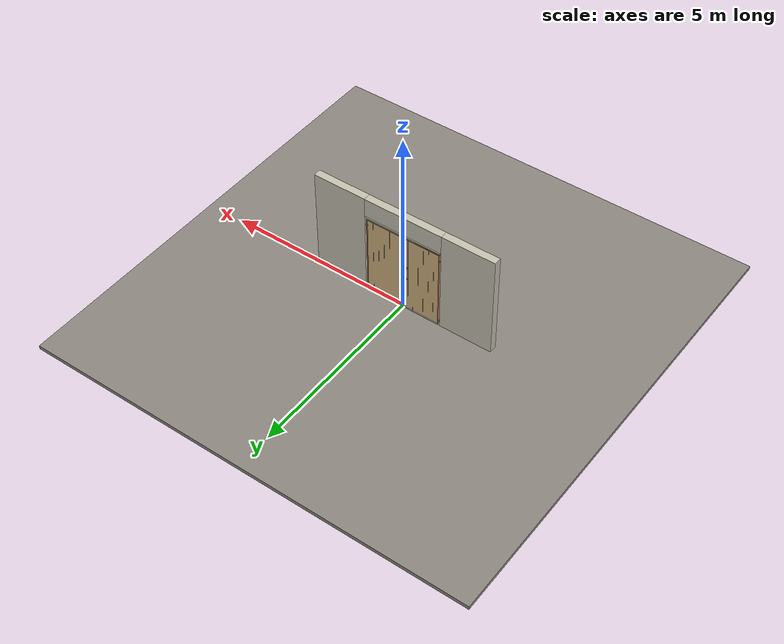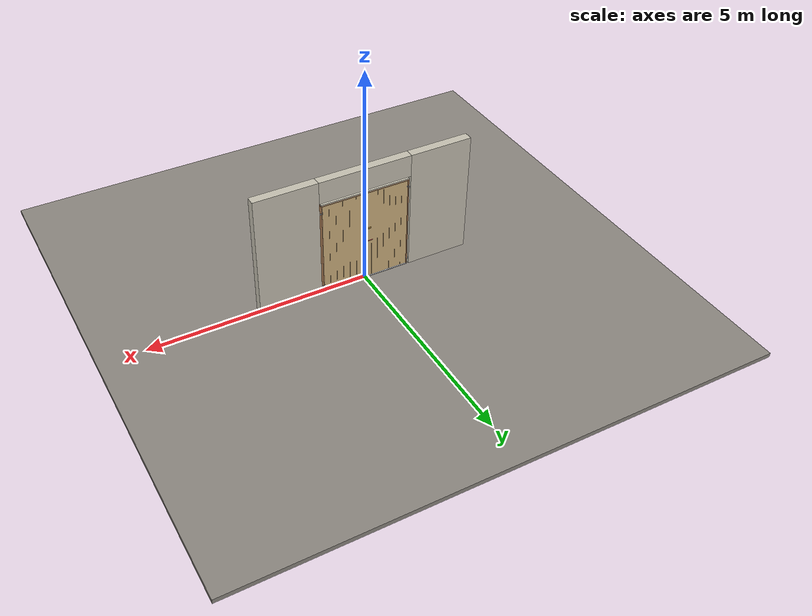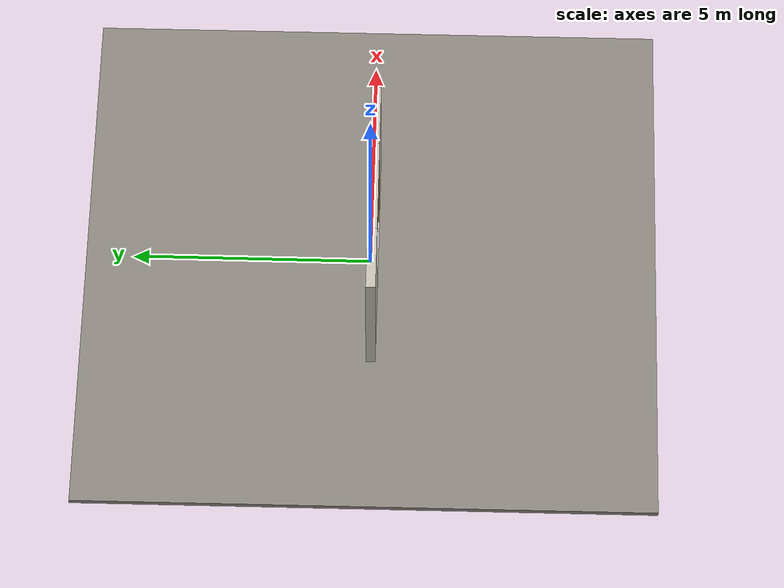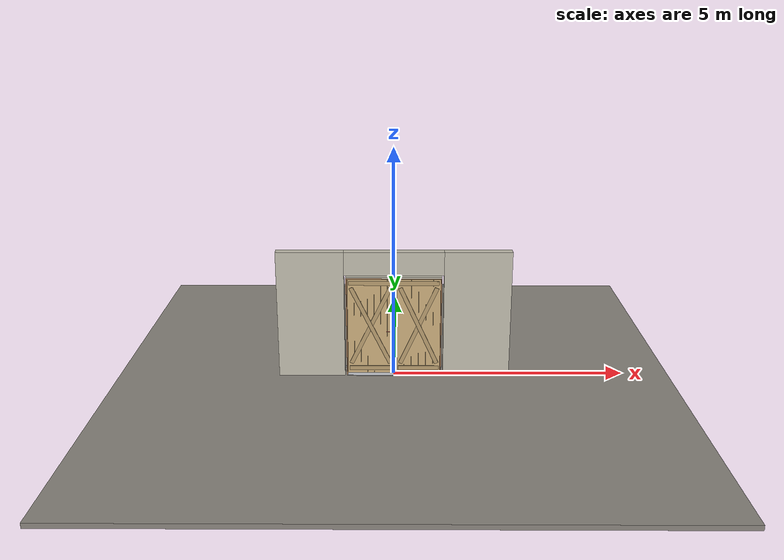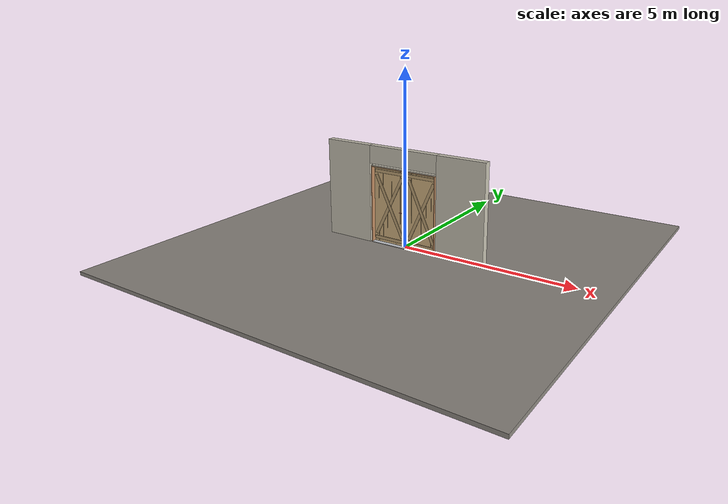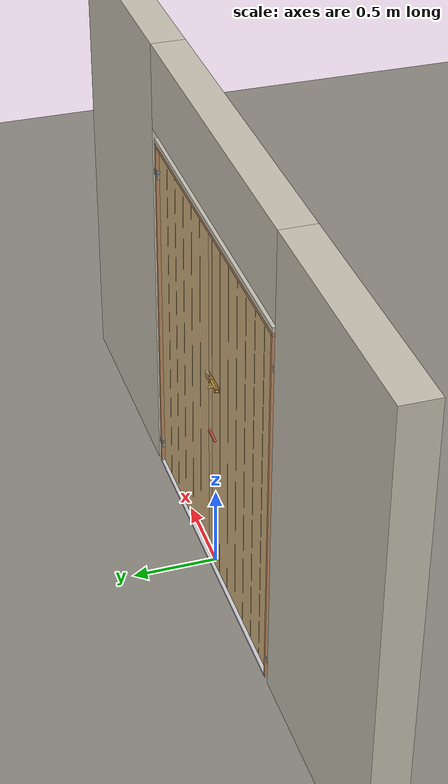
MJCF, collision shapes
<?xml version="1.0" ?>
<mujoco model="db0279_swing_double_full">
  <compiler angle="radian" meshdir="../../hardware" texturedir="../../textures" autolimits="true" inertiafromgeom="false"/>
  <option timestep="0.002" integrator="implicitfast" cone="elliptic" impratio="10" noslip_iterations="3">
    <flag multiccd="enable"/>
  </option>
  <size memory="16M"/>
  <default>
    <geom condim="4" solref="0.005 1" solimp="0.95 0.99 0.001"/>
    <joint solreflimit="0.005 1" solimplimit="0.95 0.99 0.001"/>
    <tendon solreflimit="0.005 1"/>
    <equality solref="0.002 1"/>
  </default>
  <visual>
    <headlight ambient="0.4 0.4 0.4" diffuse="0.7 0.7 0.7" specular="0.2 0.2 0.2"/>
    <quality shadowsize="4096"/>
    <map znear="0.01" zfar="60"/>
  </visual>
  <asset>
    <mesh name="ring_cc5c941a8a" file="ring_cc5c941a8a.obj"/>
    <mesh name="strap_hinge_78d1bbb966" file="strap_hinge_78d1bbb966.obj"/>
    <material name="mat_floor" rgba="0.55 0.53 0.5 1" specular="0.2" shininess="0.15" reflectance="0"/>
    <material name="mat_wall" rgba="0.78 0.76 0.7 1" specular="0.2" shininess="0.1" reflectance="0"/>
    <material name="mat_leaf_a" rgba="0.82 0.7 0.5 1" specular="0.2" shininess="0.45" reflectance="0"/>
    <material name="mat_leaf_a_brace" rgba="0.738 0.63 0.45 1" specular="0.2" shininess="0.2" reflectance="0"/>
    <material name="mat_hinge" rgba="0.65 0.66 0.68 1" specular="0.74" shininess="0.5" reflectance="0.36"/>
    <material name="mat_op_wrought_iron" rgba="0.08 0.08 0.09 1" specular="0.56" shininess="0.25" reflectance="0.24"/>
    <material name="mat_op_brass" rgba="0.85 0.66 0.3 1" specular="0.8" shininess="0.75" reflectance="0.4"/>
    <material name="mat_leaf_b" rgba="0.82 0.7 0.5 1" specular="0.2" shininess="0.45" reflectance="0"/>
    <material name="mat_leaf_b_brace" rgba="0.738 0.63 0.45 1" specular="0.2" shininess="0.2" reflectance="0"/>
    <material name="mat_frame" rgba="0.75 0.55 0.38 1" specular="0.2" shininess="0.45" reflectance="0"/>
    <material name="mat_threshold" rgba="0.8 0.81 0.83 1" specular="0.8" shininess="0.6" reflectance="0.4"/>
    <texture name="skybox" type="skybox" builtin="gradient" rgb1="0.6 0.7 0.85" rgb2="0.9 0.92 0.95" width="256" height="256"/>
  </asset>
  <worldbody>
    <light name="sun" pos="1.5 -2.5 4" dir="-0.3 0.5 -0.8" directional="true" diffuse="0.8 0.8 0.8" specular="0.3 0.3 0.3" castshadow="true"/>
    <light name="fill" pos="-1.5 2.5 3" dir="0.3 -0.5 -0.7" directional="true" diffuse="0.35 0.35 0.4" castshadow="false"/>
    <camera name="robot_view" pos="0 -2.757687 1.862413" xyaxes="1 0 0 0 0.26963 0.962964" fovy="52"/>
    <camera name="far_view" pos="0 2.641687 1.862413" xyaxes="-1 0 0 0 -0.26963 0.962964" fovy="52"/>
    <camera name="iso" pos="-2.051762 -2.325737 2.294363" xyaxes="0.741536 -0.670913 0 0.242917 0.268487 0.932151" fovy="46"/>
    <camera name="detail_handle" pos="0.0735 -0.854 1.27" xyaxes="0.97561 0.219512 0 -0.070934 0.315262 0.94635" fovy="38"/>
    <geom name="floor" type="box" size="6 6 0.05" pos="0 0 -0.05" material="mat_floor" group="0" contype="1" conaffinity="1" friction="0.8 0.005 0.0001" density="2400"/>
    <geom name="wall_left" type="box" size="0.71775 0.1 1.4065" pos="-1.78225 -0.058 1.4065" material="mat_wall" group="0" contype="1" conaffinity="1" friction="0.6 0.005 0.0001" density="800"/>
    <geom name="wall_right" type="box" size="0.71775 0.1 1.4065" pos="1.78225 -0.058 1.4065" material="mat_wall" group="0" contype="1" conaffinity="1" friction="0.6 0.005 0.0001" density="800"/>
    <geom name="wall_header" type="box" size="1.0645 0.1 0.255" pos="0 -0.058 2.558" material="mat_wall" group="0" contype="1" conaffinity="1" friction="0.6 0.005 0.0001" density="800"/>
    <geom name="hinge_pintle_0" type="cylinder" size="0.008 0.02" pos="-1.0015 0.029 0.141" material="mat_hinge" group="1" contype="0" conaffinity="0" density="7850"/>
    <geom name="hinge_pintle_1" type="cylinder" size="0.008 0.02" pos="-1.0015 0.029 2.033" material="mat_hinge" group="1" contype="0" conaffinity="0" density="7850"/>
    <geom name="hinge_pintle_0_2" type="cylinder" size="0.008 0.02" pos="1.0015 0.029 0.141" material="mat_hinge" group="1" contype="0" conaffinity="0" density="7850"/>
    <geom name="hinge_pintle_1_2" type="cylinder" size="0.008 0.02" pos="1.0015 0.029 2.033" material="mat_hinge" group="1" contype="0" conaffinity="0" density="7850"/>
    <geom name="jamb_l" type="box" size="0.0095 0.1 1.1065" pos="-1.014 -0.058 1.1065" material="mat_frame" group="0" contype="1" conaffinity="1" friction="0.6 0.005 0.0001" density="300"/>
    <geom name="jamb_r" type="box" size="0.0095 0.1 1.1065" pos="1.014 -0.058 1.1065" material="mat_frame" group="0" contype="1" conaffinity="1" friction="0.6 0.005 0.0001" density="300"/>
    <geom name="jamb_head" type="box" size="1.0235 0.1 0.0095" pos="0 -0.058 2.2225" material="mat_frame" group="0" contype="1" conaffinity="1" friction="0.6 0.005 0.0001" density="300"/>
    <geom name="head_stud" type="box" size="1.0235 0.1 0.015" pos="0 -0.058 2.247" material="mat_wall" group="0" contype="1" conaffinity="1" friction="0.6 0.005 0.0001" density="500"/>
    <geom name="threshold" type="box" size="1.0235 0.1 0.0065" pos="0 -0.058 0.0065" material="mat_threshold" group="0" contype="1" conaffinity="1" friction="0.5 0.005 0.0001" density="2700"/>
    <geom name="hinge_pintle_0_strap_0" type="box" size="0.028 0.0064 0.016" pos="-1.037 0.029 0.141" material="mat_hinge" group="1" contype="0" conaffinity="0" density="7850"/>
    <geom name="hinge_pintle_0_strap_1" type="box" size="0.028 0.0064 0.016" pos="1.037 0.029 0.141" material="mat_hinge" group="1" contype="0" conaffinity="0" density="7850"/>
    <geom name="hinge_pintle_1_strap_0" type="box" size="0.028 0.0064 0.016" pos="-1.037 0.029 2.033" material="mat_hinge" group="1" contype="0" conaffinity="0" density="7850"/>
    <geom name="hinge_pintle_1_strap_1" type="box" size="0.028 0.0064 0.016" pos="1.037 0.029 2.033" material="mat_hinge" group="1" contype="0" conaffinity="0" density="7850"/>
    <site name="approach_point" pos="0 -1.5 0" quat="1 0 0 0" size="0.05" rgba="0.2 0.9 0.2 0.5" group="4"/>
    <site name="goal_point" pos="0 1.5 0" quat="1 0 0 0" size="0.05" rgba="0.2 0.9 0.2 0.5" group="4"/>
    <site name="door_plane_center" pos="0 0 1.1065" quat="1 0 0 0" size="0.02" rgba="0.2 0.9 0.2 0.5" group="4"/>
    <site name="approach_point_2" pos="0 -1.5 0" quat="1 0 0 0" size="0.05" rgba="0.2 0.9 0.2 0.5" group="4"/>
    <site name="goal_point_2" pos="0 1.5 0" quat="1 0 0 0" size="0.05" rgba="0.2 0.9 0.2 0.5" group="4"/>
    <site name="door_plane_center_2" pos="0 0 1.1065" quat="1 0 0 0" size="0.02" rgba="0.2 0.9 0.2 0.5" group="4"/>
    <site name="approach_point_3" pos="0 -1.5 0" quat="1 0 0 0" size="0.05" rgba="0.2 0.9 0.2 0.5" group="4"/>
    <site name="goal_point_3" pos="0 1.5 0" quat="1 0 0 0" size="0.05" rgba="0.2 0.9 0.2 0.5" group="4"/>
    <site name="door_plane_center_3" pos="0 0 1.1065" quat="1 0 0 0" size="0.02" rgba="0.2 0.9 0.2 0.5" group="4"/>
    <body name="leaf_a" pos="-1.0045 0 0">
      <inertial pos="0.493714 0.001289 1.112338" mass="39.784151" quat="0.500941 0.498683 -0.501266 0.499106" diaginertia="3.490831628 16.572980133 20.045245287"/>
      <joint name="leaf_a_hinge" type="hinge" axis="0 0 1" pos="0.003 0.029 0" limited="true" range="0 1.396263" damping="0.44732" frictionloss="3.732683" armature="0.02"/>
      <geom name="leaf_a_slab" type="box" size="0.5 0.022 1.096" pos="0.503 0 1.113" material="mat_leaf_a" group="0" contype="1" conaffinity="1" friction="0.35 0.005 0.0001" density="1"/>
      <geom name="leaf_a_plank_gap_1" type="box" size="0.002 0.023 1.086" pos="0.145857 0 1.113" material="mat_leaf_a_brace" group="1" contype="0" conaffinity="0" density="1"/>
      <geom name="leaf_a_plank_gap_2" type="box" size="0.002 0.023 1.086" pos="0.288714 0 1.113" material="mat_leaf_a_brace" group="1" contype="0" conaffinity="0" density="1"/>
      <geom name="leaf_a_plank_gap_3" type="box" size="0.002 0.023 1.086" pos="0.431571 0 1.113" material="mat_leaf_a_brace" group="1" contype="0" conaffinity="0" density="1"/>
      <geom name="leaf_a_plank_gap_4" type="box" size="0.002 0.023 1.086" pos="0.574429 0 1.113" material="mat_leaf_a_brace" group="1" contype="0" conaffinity="0" density="1"/>
      <geom name="leaf_a_plank_gap_5" type="box" size="0.002 0.023 1.086" pos="0.717286 0 1.113" material="mat_leaf_a_brace" group="1" contype="0" conaffinity="0" density="1"/>
      <geom name="leaf_a_plank_gap_6" type="box" size="0.002 0.023 1.086" pos="0.860143 0 1.113" material="mat_leaf_a_brace" group="1" contype="0" conaffinity="0" density="1"/>
      <geom name="leaf_a_batten_13" type="box" size="0.47 0.01 0.045" pos="0.503 -0.032 0.137" material="mat_leaf_a_brace" group="1" contype="0" conaffinity="0" density="1"/>
      <geom name="leaf_a_batten_208" type="box" size="0.47 0.01 0.045" pos="0.503 -0.032 2.089" material="mat_leaf_a_brace" group="1" contype="0" conaffinity="0" density="1"/>
      <geom name="leaf_a_brace_z" type="box" size="0.965057 0.01 0.045" pos="0.503 -0.032 1.113" quat="0.848234 0 -0.529622 0" material="mat_leaf_a_brace" group="1" contype="0" conaffinity="0" density="1"/>
      <geom name="leaf_a_brace_x" type="box" size="0.965057 0.01 0.045" pos="0.503 -0.032 1.113" quat="0.848234 0 0.529622 0" material="mat_leaf_a_brace" group="1" contype="0" conaffinity="0" density="1"/>
      <geom name="hinge_strap_0" type="mesh" mesh="strap_hinge_78d1bbb966" pos="0.003 0.025 0.167" material="mat_hinge" group="1" contype="0" conaffinity="0" density="7850"/>
      <geom name="hinge_strap_eye_0" type="cylinder" size="0.011 0.012" pos="0.003 0.029 0.167" material="mat_hinge" group="1" contype="0" conaffinity="0" density="7850"/>
      <geom name="hinge_strap_neck_0" type="box" size="0.012 0.006 0.006" pos="0.003 0.027 0.167" material="mat_hinge" group="1" contype="0" conaffinity="0" density="7850"/>
      <geom name="hinge_strap_1" type="mesh" mesh="strap_hinge_78d1bbb966" pos="0.003 0.025 2.059" material="mat_hinge" group="1" contype="0" conaffinity="0" density="7850"/>
      <geom name="hinge_strap_eye_1" type="cylinder" size="0.011 0.012" pos="0.003 0.029 2.059" material="mat_hinge" group="1" contype="0" conaffinity="0" density="7850"/>
      <geom name="hinge_strap_neck_1" type="box" size="0.012 0.006 0.006" pos="0.003 0.027 2.059" material="mat_hinge" group="1" contype="0" conaffinity="0" density="7850"/>
      <geom name="leaf_a_ring_pull_n" type="mesh" mesh="ring_cc5c941a8a" pos="0.898 -0.022 1.05" quat="0.707107 0.707107 0 0" material="mat_op_wrought_iron" group="1" contype="0" conaffinity="0" density="3000"/>
      <geom name="leaf_a_ring_pull_col_n" type="capsule" size="0.008 0.05" pos="0.898 -0.054 0.99" quat="0.707107 0 0.707107 0" material="mat_op_wrought_iron" group="3" contype="1" conaffinity="1" rgba="0.8 0.3 0.3 0.25" friction="0.7 0.01 0.0001" density="3000"/>
      <geom name="leaf_a_ring_pull_p" type="mesh" mesh="ring_cc5c941a8a" pos="0.898 0.022 1.05" quat="-0.707107 0.707107 0 0" material="mat_op_wrought_iron" group="1" contype="0" conaffinity="0" density="3000"/>
      <geom name="leaf_a_ring_pull_col_p" type="capsule" size="0.008 0.05" pos="0.898 0.054 0.99" quat="0.707107 0 0.707107 0" material="mat_op_wrought_iron" group="3" contype="1" conaffinity="1" rgba="0.8 0.3 0.3 0.25" friction="0.7 0.01 0.0001" density="3000"/>
      <geom name="leaf_a_aux_bolt_plate" type="box" size="0.0595 0.019 0.001" pos="0.9355 0.023 1.3" quat="0.707107 -0.707107 0 0" material="mat_op_brass" group="1" contype="0" conaffinity="0" density="7800"/>
      <geom name="leaf_a_aux_bolt_guide_0_leg_n" type="box" size="0.006 0.002 0.0125" pos="0.987 0.0345 1.311" quat="0.707107 -0.707107 0 0" material="mat_op_brass" group="1" contype="0" conaffinity="0" density="7800"/>
      <geom name="leaf_a_aux_bolt_guide_0_leg_p" type="box" size="0.006 0.002 0.0125" pos="0.987 0.0345 1.289" quat="0.707107 -0.707107 0 0" material="mat_op_brass" group="1" contype="0" conaffinity="0" density="7800"/>
      <geom name="leaf_a_aux_bolt_guide_0_bridge" type="box" size="0.006 0.013 0.002" pos="0.987 0.045 1.3" quat="0.707107 -0.707107 0 0" material="mat_op_brass" group="1" contype="0" conaffinity="0" density="7800"/>
      <geom name="leaf_a_aux_bolt_guide_1_leg_n" type="box" size="0.006 0.002 0.0125" pos="0.886 0.0345 1.311" quat="0.707107 -0.707107 0 0" material="mat_op_brass" group="1" contype="0" conaffinity="0" density="7800"/>
      <geom name="leaf_a_aux_bolt_guide_1_leg_p" type="box" size="0.006 0.002 0.0125" pos="0.886 0.0345 1.289" quat="0.707107 -0.707107 0 0" material="mat_op_brass" group="1" contype="0" conaffinity="0" density="7800"/>
      <geom name="leaf_a_aux_bolt_guide_1_bridge" type="box" size="0.006 0.013 0.002" pos="0.886 0.045 1.3" quat="0.707107 -0.707107 0 0" material="mat_op_brass" group="1" contype="0" conaffinity="0" density="7800"/>
      <site name="leaf_a_ring_pull_grip_n" pos="0.898 -0.054 0.99" quat="1 0 0 0" size="0.012" rgba="0.2 0.9 0.2 0.5" group="4"/>
      <site name="leaf_a_ring_pull_grip_p" pos="0.898 0.054 0.99" quat="1 0 0 0" size="0.012" rgba="0.2 0.9 0.2 0.5" group="4"/>
      <site name="leaf_a_edge_mid" pos="1.003 0 1.096" quat="1 0 0 0" size="0.02" rgba="0.2 0.9 0.2 0.5" group="4"/>
      <body name="leaf_a_aux_bolt" pos="1.003 0.034 1.3">
        <inertial pos="-0.068563 0.00492 0" mass="0.111784" quat="0.998595 0 0 -0.05299" diaginertia="0.000012212 0.000071985 0.000082309"/>
        <joint name="leaf_a_aux_bolt_slide" type="slide" axis="-1 0 0" limited="true" range="0 0.045" damping="1" frictionloss="1" armature="0.1" ref="0.045"/>
        <geom name="leaf_a_aux_bolt_rod" type="capsule" size="0.006 0.044" pos="-0.065 0 0" quat="0.707107 0 0.707107 0" material="mat_op_brass" group="0" contype="1" conaffinity="1" friction="0.6 0.005 0.0001" density="7850"/>
        <geom name="leaf_a_aux_bolt_knob" type="capsule" size="0.005 0.01" pos="-0.08 0.015 0" quat="0.707107 -0.707107 0 0" material="mat_op_brass" group="0" contype="1" conaffinity="1" friction="0.6 0.005 0.0001" density="7850"/>
        <geom name="leaf_a_aux_bolt_knob_end" type="sphere" size="0.00675" pos="-0.08 0.03 0" material="mat_op_brass" group="1" contype="0" conaffinity="0" density="7850"/>
        <site name="leaf_a_aux_bolt_grip" pos="-0.08 0.034 0" quat="1 0 0 0" size="0.012" rgba="0.2 0.9 0.2 0.5" group="4"/>
      </body>
    </body>
    <body name="leaf_b" pos="1.0045 0 0">
      <inertial pos="-0.457031 0.001222 1.113" mass="39.444065" quat="0.498708 0.501288 -0.498708 0.501288" diaginertia="2.990716118 16.748379029 19.724697938"/>
      <joint name="leaf_b_hinge" type="hinge" axis="0 0 -1" pos="-0.003 0.029 0" limited="true" range="0 0.001" damping="0.44732" frictionloss="3.732683" armature="0.02"/>
      <geom name="leaf_b_edge_1300_wall_n" type="box" size="0.03 0.024 0.01" pos="-0.973 0.002 1.3" material="mat_leaf_b" group="0" contype="1" conaffinity="1" friction="0.6 0.005 0.0001" density="1"/>
      <geom name="leaf_b_edge_1300_wall_p" type="box" size="0.022 0.003 0.01" pos="-0.981 0.045 1.3" material="mat_leaf_b" group="0" contype="1" conaffinity="1" friction="0.6 0.005 0.0001" density="1"/>
      <geom name="leaf_b_edge_1300_back" type="box" size="0.009 0.008 0.01" pos="-0.952 0.034 1.3" material="mat_leaf_b" group="0" contype="1" conaffinity="1" friction="0.6 0.005 0.0001" density="1"/>
      <geom name="leaf_b_edge_seg_0" type="box" size="0.03 0.022 0.6365" pos="-0.973 0 0.6535" material="mat_leaf_b" group="0" contype="1" conaffinity="1" friction="0.6 0.005 0.0001" density="1"/>
      <geom name="leaf_b_edge_seg_1" type="box" size="0.03 0.022 0.4495" pos="-0.973 0 1.7595" material="mat_leaf_b" group="0" contype="1" conaffinity="1" friction="0.6 0.005 0.0001" density="1"/>
      <geom name="leaf_b_slab" type="box" size="0.47 0.022 1.096" pos="-0.473 0 1.113" material="mat_leaf_b" group="0" contype="1" conaffinity="1" friction="0.35 0.005 0.0001" density="1"/>
      <geom name="leaf_b_plank_gap_1" type="box" size="0.002 0.023 1.086" pos="-0.159667 0 1.113" material="mat_leaf_b_brace" group="1" contype="0" conaffinity="0" density="1"/>
      <geom name="leaf_b_plank_gap_2" type="box" size="0.002 0.023 1.086" pos="-0.316333 0 1.113" material="mat_leaf_b_brace" group="1" contype="0" conaffinity="0" density="1"/>
      <geom name="leaf_b_plank_gap_3" type="box" size="0.002 0.023 1.086" pos="-0.473 0 1.113" material="mat_leaf_b_brace" group="1" contype="0" conaffinity="0" density="1"/>
      <geom name="leaf_b_plank_gap_4" type="box" size="0.002 0.023 1.086" pos="-0.629667 0 1.113" material="mat_leaf_b_brace" group="1" contype="0" conaffinity="0" density="1"/>
      <geom name="leaf_b_plank_gap_5" type="box" size="0.002 0.023 1.086" pos="-0.786333 0 1.113" material="mat_leaf_b_brace" group="1" contype="0" conaffinity="0" density="1"/>
      <geom name="leaf_b_batten_13" type="box" size="0.44 0.01 0.045" pos="-0.473 -0.032 0.137" material="mat_leaf_b_brace" group="1" contype="0" conaffinity="0" density="1"/>
      <geom name="leaf_b_batten_208" type="box" size="0.44 0.01 0.045" pos="-0.473 -0.032 2.089" material="mat_leaf_b_brace" group="1" contype="0" conaffinity="0" density="1"/>
      <geom name="leaf_b_brace_z" type="box" size="0.952246 0.01 0.045" pos="-0.473 -0.032 1.113" quat="0.841106 0 0.54087 0" material="mat_leaf_b_brace" group="1" contype="0" conaffinity="0" density="1"/>
      <geom name="leaf_b_brace_x" type="box" size="0.952246 0.01 0.045" pos="-0.473 -0.032 1.113" quat="0.841106 0 -0.54087 0" material="mat_leaf_b_brace" group="1" contype="0" conaffinity="0" density="1"/>
      <geom name="hinge_strap_0_2" type="mesh" mesh="strap_hinge_78d1bbb966" pos="-0.003 0.025 0.167" quat="0 0 0 1" material="mat_hinge" group="1" contype="0" conaffinity="0" density="7850"/>
      <geom name="hinge_strap_eye_0_2" type="cylinder" size="0.011 0.012" pos="-0.003 0.029 0.167" material="mat_hinge" group="1" contype="0" conaffinity="0" density="7850"/>
      <geom name="hinge_strap_neck_0_2" type="box" size="0.012 0.006 0.006" pos="-0.003 0.027 0.167" material="mat_hinge" group="1" contype="0" conaffinity="0" density="7850"/>
      <geom name="hinge_strap_1_2" type="mesh" mesh="strap_hinge_78d1bbb966" pos="-0.003 0.025 2.059" quat="0 0 0 1" material="mat_hinge" group="1" contype="0" conaffinity="0" density="7850"/>
      <geom name="hinge_strap_eye_1_2" type="cylinder" size="0.011 0.012" pos="-0.003 0.029 2.059" material="mat_hinge" group="1" contype="0" conaffinity="0" density="7850"/>
      <geom name="hinge_strap_neck_1_2" type="box" size="0.012 0.006 0.006" pos="-0.003 0.027 2.059" material="mat_hinge" group="1" contype="0" conaffinity="0" density="7850"/>
      <site name="leaf_b_edge_mid" pos="-1.003 0 1.096" quat="1 0 0 0" size="0.02" rgba="0.2 0.9 0.2 0.5" group="4"/>
    </body>
  </worldbody>
  <sensor>
    <jointpos name="leaf_a_hinge_pos" joint="leaf_a_hinge"/>
    <jointvel name="leaf_a_hinge_vel" joint="leaf_a_hinge"/>
    <jointpos name="leaf_a_aux_bolt_slide_pos" joint="leaf_a_aux_bolt_slide"/>
    <jointvel name="leaf_a_aux_bolt_slide_vel" joint="leaf_a_aux_bolt_slide"/>
    <jointpos name="leaf_b_hinge_pos" joint="leaf_b_hinge"/>
    <jointvel name="leaf_b_hinge_vel" joint="leaf_b_hinge"/>
  </sensor>
</mujoco>
